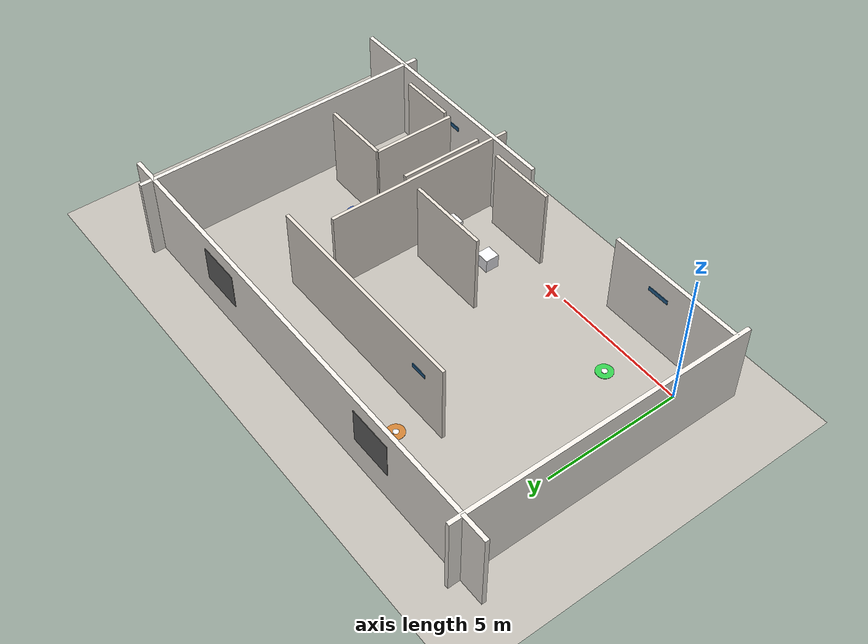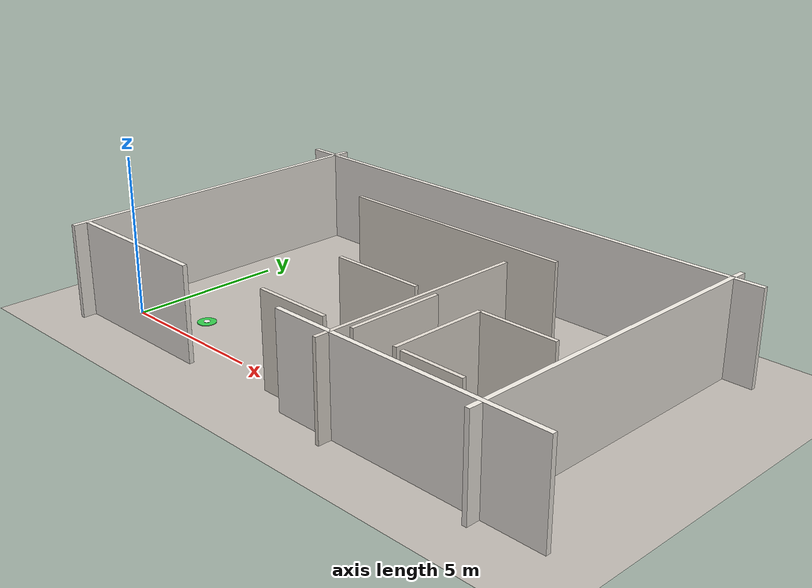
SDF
<sdf version="1.8">
 <world name="office_world_professional">
  <scene>
   <ambient>0.4 0.4 0.4 1</ambient>
   <background>0.7 0.85 1.0 1</background>
   <shadows>true</shadows>
   <sky>
    <time>10.0</time>
    <sunrise>6</sunrise>
    <sunset>18</sunset>
    <clouds>
     <speed>5</speed>
     <direction>1 0 0</direction>
     <humidity>0.3</humidity>
     <mean_size>0.5</mean_size>
     <ambient>0.8 0.8 0.8 1</ambient>
    </clouds>
   </sky>
  </scene>
  <physics name="1ms" type="ignored">
   <max_step_size>0.001</max_step_size>
   <real_time_factor>1.0</real_time_factor>
  </physics>
  <plugin filename="gz-sim-physics-system" name="gz::sim::systems::Physics"/>
  <plugin filename="gz-sim-user-commands-system" name="gz::sim::systems::UserCommands"/>
  <plugin filename="gz-sim-scene-broadcaster-system" name="gz::sim::systems::SceneBroadcaster"/>
  <plugin filename="gz-sim-sensors-system" name="gz::sim::systems::Sensors">
   <render_engine>ogre2</render_engine>
  </plugin>
  <plugin filename="gz-sim-contact-system" name="gz::sim::systems::Contact"/>
  <light type="directional" name="ambient_fill">
   <cast_shadows>false</cast_shadows>
   <pose>0 0 5 0 0 0</pose>
   <diffuse>0.4 0.42 0.45 1</diffuse>
   <specular>0.1 0.1 0.1 1</specular>
   <direction>0 0 -1</direction>
  </light>
  <light type="directional" name="sun">
   <pose>18 7 8 0 0 0</pose>
   <diffuse>0.95 0.90 0.80 1</diffuse>
   <specular>0.3 0.28 0.25 1</specular>
   <direction>-0.5 -0.2 -0.8</direction>
  </light>
  <light type="point" name="ceiling_light_1">
   <cast_shadows>false</cast_shadows>
   <pose>3 2 2.8 0 0 0</pose>
   <diffuse>0.9 0.9 0.95 1</diffuse>
   <specular>0.2 0.2 0.2 1</specular>
   <attenuation>
    <range>10</range>
    <constant>0.3</constant>
    <linear>0.1</linear>
    <quadratic>0.05</quadratic>
   </attenuation>
  </light>
  <light type="point" name="ceiling_light_2">
   <cast_shadows>false</cast_shadows>
   <pose>7 5 2.8 0 0 0</pose>
   <diffuse>0.9 0.9 0.95 1</diffuse>
   <specular>0.2 0.2 0.2 1</specular>
   <attenuation>
    <range>10</range>
    <constant>0.3</constant>
    <linear>0.1</linear>
    <quadratic>0.05</quadratic>
   </attenuation>
  </light>
  <light type="point" name="ceiling_light_3">
   <cast_shadows>false</cast_shadows>
   <pose>12 3 2.8 0 0 0</pose>
   <diffuse>0.9 0.9 0.95 1</diffuse>
   <specular>0.2 0.2 0.2 1</specular>
   <attenuation>
    <range>10</range>
    <constant>0.3</constant>
    <linear>0.1</linear>
    <quadratic>0.05</quadratic>
   </attenuation>
  </light>
  <model name="ground_plane">
   <static>true</static>
   <link name="link">
    <collision name="collision">
     <geometry><plane><normal>0 0 1</normal><size>30 25</size></plane></geometry>
     <surface><friction><ode><mu>0.8</mu><mu2>0.6</mu2></ode></friction></surface>
    </collision>
    <visual name="visual">
     <geometry><plane><normal>0 0 1</normal><size>30 25</size></plane></geometry>
     <material>
      <ambient>0.65 0.63 0.60 1</ambient>
      <diffuse>0.75 0.73 0.70 1</diffuse>
      <specular>0.3 0.3 0.3 1</specular>
     </material>
    </visual>
   </link>
  </model>
  <model name="wall_north">
   <static>true</static>
   <pose>7 9 1.5 0 0 0</pose>
   <link name="link">
    <collision name="collision"><geometry><box><size>18 0.15 3</size></box></geometry></collision>
    <visual name="visual">
     <geometry><box><size>18 0.15 3</size></box></geometry>
     <material>
      <ambient>0.9 0.88 0.85 1</ambient>
      <diffuse>0.95 0.93 0.90 1</diffuse>
      <specular>0.1 0.1 0.1 1</specular>
     </material>
    </visual>
   </link>
  </model>
  <model name="wall_south_left">
   <static>true</static>
   <pose>1.5 -1 1.5 0 0 0</pose>
   <link name="link">
    <collision name="collision"><geometry><box><size>5 0.15 3</size></box></geometry></collision>
    <visual name="visual">
     <geometry><box><size>5 0.15 3</size></box></geometry>
     <material>
      <ambient>0.9 0.88 0.85 1</ambient>
      <diffuse>0.95 0.93 0.90 1</diffuse>
      <specular>0.1 0.1 0.1 1</specular>
     </material>
    </visual>
   </link>
  </model>
  <model name="wall_south_right">
   <static>true</static>
   <pose>12.5 -1 1.5 0 0 0</pose>
   <link name="link">
    <collision name="collision"><geometry><box><size>9 0.15 3</size></box></geometry></collision>
    <visual name="visual">
     <geometry><box><size>9 0.15 3</size></box></geometry>
     <material>
      <ambient>0.9 0.88 0.85 1</ambient>
      <diffuse>0.95 0.93 0.90 1</diffuse>
      <specular>0.1 0.1 0.1 1</specular>
     </material>
    </visual>
   </link>
  </model>
  <model name="wall_west">
   <static>true</static>
   <pose>-1 4 1.5 0 0 0</pose>
   <link name="link">
    <collision name="collision"><geometry><box><size>0.15 11 3</size></box></geometry></collision>
    <visual name="visual">
     <geometry><box><size>0.15 11 3</size></box></geometry>
     <material>
      <ambient>0.9 0.88 0.85 1</ambient>
      <diffuse>0.95 0.93 0.90 1</diffuse>
      <specular>0.1 0.1 0.1 1</specular>
     </material>
    </visual>
   </link>
  </model>
  <model name="wall_east">
   <static>true</static>
   <pose>15 4 1.5 0 0 0</pose>
   <link name="link">
    <collision name="collision"><geometry><box><size>0.15 11 3</size></box></geometry></collision>
    <visual name="visual">
     <geometry><box><size>0.15 11 3</size></box></geometry>
     <material>
      <ambient>0.9 0.88 0.85 1</ambient>
      <diffuse>0.95 0.93 0.90 1</diffuse>
      <specular>0.1 0.1 0.1 1</specular>
     </material>
    </visual>
   </link>
  </model>
  <model name="interior_wall_storage">
   <static>true</static>
   <pose>7 6.5 1.5 0 0 0</pose>
   <link name="link">
    <collision name="collision"><geometry><box><size>8 0.12 3</size></box></geometry></collision>
    <visual name="visual">
     <geometry><box><size>8 0.12 3</size></box></geometry>
     <material>
      <ambient>0.85 0.82 0.78 1</ambient>
      <diffuse>0.90 0.87 0.83 1</diffuse>
      <specular>0.1 0.1 0.1 1</specular>
     </material>
    </visual>
   </link>
  </model>
  <model name="interior_wall_office">
   <static>true</static>
   <pose>10 2 1.5 0 0 0</pose>
   <link name="link">
    <collision name="collision"><geometry><box><size>0.12 7 3</size></box></geometry></collision>
    <visual name="visual">
     <geometry><box><size>0.12 7 3</size></box></geometry>
     <material>
      <ambient>0.85 0.82 0.78 1</ambient>
      <diffuse>0.90 0.87 0.83 1</diffuse>
      <specular>0.1 0.1 0.1 1</specular>
     </material>
    </visual>
   </link>
  </model>
  <model name="window_north_1">
   <static>true</static>
   <pose>3 9.05 1.8 0 0 0</pose>
   <link name="link">
    <visual name="glass">
     <geometry><box><size>1.5 0.05 1.2</size></box></geometry>
     <material>
      <ambient>0.5 0.6 0.8 0.4</ambient>
      <diffuse>0.6 0.7 0.9 0.4</diffuse>
      <specular>0.9 0.9 0.9 1</specular>
     </material>
    </visual>
    <visual name="frame">
     <geometry><box><size>1.6 0.08 1.3</size></box></geometry>
     <material><ambient>0.3 0.3 0.3 1</ambient><diffuse>0.4 0.4 0.4 1</diffuse></material>
    </visual>
   </link>
  </model>
  <model name="window_north_2">
   <static>true</static>
   <pose>11 9.05 1.8 0 0 0</pose>
   <link name="link">
    <visual name="glass">
     <geometry><box><size>1.5 0.05 1.2</size></box></geometry>
     <material>
      <ambient>0.5 0.6 0.8 0.4</ambient>
      <diffuse>0.6 0.7 0.9 0.4</diffuse>
      <specular>0.9 0.9 0.9 1</specular>
     </material>
    </visual>
    <visual name="frame">
     <geometry><box><size>1.6 0.08 1.3</size></box></geometry>
     <material><ambient>0.3 0.3 0.3 1</ambient><diffuse>0.4 0.4 0.4 1</diffuse></material>
    </visual>
   </link>
  </model>
  <model name="sign_reception">
   <static>true</static>
   <pose>2 -0.9 2.2 0 0 0</pose>
   <link name="link">
    <visual name="sign">
     <geometry><box><size>0.8 0.02 0.15</size></box></geometry>
     <material><ambient>0.1 0.3 0.5 1</ambient><diffuse>0.15 0.4 0.6 1</diffuse></material>
    </visual>
   </link>
  </model>
  <model name="sign_storage">
   <static>true</static>
   <pose>4 6.65 2.2 0 0 0</pose>
   <link name="link">
    <visual name="sign">
     <geometry><box><size>0.6 0.02 0.15</size></box></geometry>
     <material><ambient>0.1 0.3 0.5 1</ambient><diffuse>0.15 0.4 0.6 1</diffuse></material>
    </visual>
   </link>
  </model>
  <model name="sign_office">
   <static>true</static>
   <pose>12 -0.9 2.2 0 0 0</pose>
   <link name="link">
    <visual name="sign">
     <geometry><box><size>0.5 0.02 0.15</size></box></geometry>
     <material><ambient>0.1 0.3 0.5 1</ambient><diffuse>0.15 0.4 0.6 1</diffuse></material>
    </visual>
   </link>
  </model>
  <model name="bathroom1_wall_north">
   <static>true</static>
   <pose>8 2.5 1.5 0 0 0</pose>
   <link name="link">
    <collision name="collision"><geometry><box><size>3 0.12 3</size></box></geometry></collision>
    <visual name="visual">
     <geometry><box><size>3 0.12 3</size></box></geometry>
     <material>
      <ambient>0.85 0.82 0.78 1</ambient>
      <diffuse>0.90 0.87 0.83 1</diffuse>
      <specular>0.1 0.1 0.1 1</specular>
     </material>
    </visual>
   </link>
  </model>
  <model name="bathroom1_wall_south">
   <static>true</static>
   <pose>8 -0.5 1.5 0 0 0</pose>
   <link name="link">
    <collision name="collision"><geometry><box><size>2.5 0.12 3</size></box></geometry></collision>
    <visual name="visual">
     <geometry><box><size>2.5 0.12 3</size></box></geometry>
     <material>
      <ambient>0.85 0.82 0.78 1</ambient>
      <diffuse>0.90 0.87 0.83 1</diffuse>
      <specular>0.1 0.1 0.1 1</specular>
     </material>
    </visual>
   </link>
  </model>
  <model name="bathroom1_wall_east">
   <static>true</static>
   <pose>10.25 1 1.5 0 0 0</pose>
   <link name="link">
    <collision name="collision"><geometry><box><size>0.12 3 3</size></box></geometry></collision>
    <visual name="visual">
     <geometry><box><size>0.12 3 3</size></box></geometry>
     <material>
      <ambient>0.85 0.82 0.78 1</ambient>
      <diffuse>0.90 0.87 0.83 1</diffuse>
      <specular>0.1 0.1 0.1 1</specular>
     </material>
    </visual>
   </link>
  </model>
  <model name="sign_bathroom1">
   <static>true</static>
   <pose>8.5 -0.9 2.2 0 0 0</pose>
   <link name="link">
    <visual name="sign">
     <geometry><box><size>0.5 0.02 0.15</size></box></geometry>
     <material><ambient>0.5 0.2 0.1 1</ambient><diffuse>0.7 0.3 0.15 1</diffuse></material>
    </visual>
   </link>
  </model>
  <model name="toilet1">
   <static>true</static>
   <pose>9.5 1.2 0.4 0 0 0</pose>
   <link name="link">
    <collision name="collision"><geometry><box><size>0.5 0.7 0.8</size></box></geometry></collision>
    <visual name="visual">
     <geometry><box><size>0.5 0.7 0.8</size></box></geometry>
     <material>
      <ambient>0.95 0.95 0.95 1</ambient>
      <diffuse>0.98 0.98 0.98 1</diffuse>
      <specular>0.5 0.5 0.5 1</specular>
     </material>
    </visual>
   </link>
  </model>
  <model name="sink1">
   <static>true</static>
   <pose>7.5 1.2 0.6 0 0 0</pose>
   <link name="link">
    <collision name="collision"><geometry><box><size>0.5 0.5 0.5</size></box></geometry></collision>
    <visual name="visual">
     <geometry><box><size>0.5 0.5 0.5</size></box></geometry>
     <material>
      <ambient>0.9 0.9 0.92 1</ambient>
      <diffuse>0.95 0.95 0.97 1</diffuse>
      <specular>0.7 0.7 0.7 1</specular>
     </material>
    </visual>
   </link>
  </model>
  <model name="bathroom2_wall_north">
   <static>true</static>
   <pose>13 2.5 1.5 0 0 0</pose>
   <link name="link">
    <collision name="collision"><geometry><box><size>2.5 0.12 3</size></box></geometry></collision>
    <visual name="visual">
     <geometry><box><size>2.5 0.12 3</size></box></geometry>
     <material>
      <ambient>0.85 0.82 0.78 1</ambient>
      <diffuse>0.90 0.87 0.83 1</diffuse>
      <specular>0.1 0.1 0.1 1</specular>
     </material>
    </visual>
   </link>
  </model>
  <model name="bathroom2_wall_south">
   <static>true</static>
   <pose>13 -0.5 1.5 0 0 0</pose>
   <link name="link">
    <collision name="collision"><geometry><box><size>2 0.12 3</size></box></geometry></collision>
    <visual name="visual">
     <geometry><box><size>2 0.12 3</size></box></geometry>
     <material>
      <ambient>0.85 0.82 0.78 1</ambient>
      <diffuse>0.90 0.87 0.83 1</diffuse>
      <specular>0.1 0.1 0.1 1</specular>
     </material>
    </visual>
   </link>
  </model>
  <model name="bathroom2_wall_west">
   <static>true</static>
   <pose>11.75 1 1.5 0 0 0</pose>
   <link name="link">
    <collision name="collision"><geometry><box><size>0.12 3 3</size></box></geometry></collision>
    <visual name="visual">
     <geometry><box><size>0.12 3 3</size></box></geometry>
     <material>
      <ambient>0.85 0.82 0.78 1</ambient>
      <diffuse>0.90 0.87 0.83 1</diffuse>
      <specular>0.1 0.1 0.1 1</specular>
     </material>
    </visual>
   </link>
  </model>
  <model name="sign_bathroom2">
   <static>true</static>
   <pose>12.5 -0.9 2.2 0 0 0</pose>
   <link name="link">
    <visual name="sign">
     <geometry><box><size>0.5 0.02 0.15</size></box></geometry>
     <material><ambient>0.5 0.2 0.1 1</ambient><diffuse>0.7 0.3 0.15 1</diffuse></material>
    </visual>
   </link>
  </model>
  <model name="toilet2">
   <static>true</static>
   <pose>12.5 1.2 0.4 0 0 0</pose>
   <link name="link">
    <collision name="collision"><geometry><box><size>0.5 0.7 0.8</size></box></geometry></collision>
    <visual name="visual">
     <geometry><box><size>0.5 0.7 0.8</size></box></geometry>
     <material>
      <ambient>0.95 0.95 0.95 1</ambient>
      <diffuse>0.98 0.98 0.98 1</diffuse>
      <specular>0.5 0.5 0.5 1</specular>
     </material>
    </visual>
   </link>
  </model>
  <model name="sink2">
   <static>true</static>
   <pose>13.5 1.2 0.6 0 0 0</pose>
   <link name="link">
    <collision name="collision"><geometry><box><size>0.5 0.5 0.5</size></box></geometry></collision>
    <visual name="visual">
     <geometry><box><size>0.5 0.5 0.5</size></box></geometry>
     <material>
      <ambient>0.9 0.9 0.92 1</ambient>
      <diffuse>0.95 0.95 0.97 1</diffuse>
      <specular>0.7 0.7 0.7 1</specular>
     </material>
    </visual>
   </link>
  </model>
  <model name="waypoint_reception">
   <static>true</static>
   <pose>2 1 0.01 0 0 0</pose>
   <link name="link">
    <visual name="marker">
     <geometry><cylinder><radius>0.3</radius><length>0.02</length></cylinder></geometry>
     <material><ambient>0.1 0.6 0.2 1</ambient><diffuse>0.2 0.8 0.3 1</diffuse></material>
    </visual>
    <visual name="label">
     <pose>0 0 0.02 0 0 0</pose>
     <geometry><cylinder><radius>0.1</radius><length>0.01</length></cylinder></geometry>
     <material><ambient>0.9 0.9 0.9 1</ambient><diffuse>1 1 1 1</diffuse></material>
    </visual>
   </link>
  </model>
  <model name="waypoint_storage">
   <static>true</static>
   <pose>4 7.5 0.01 0 0 0</pose>
   <link name="link">
    <visual name="marker">
     <geometry><cylinder><radius>0.3</radius><length>0.02</length></cylinder></geometry>
     <material><ambient>0.6 0.4 0.1 1</ambient><diffuse>0.8 0.5 0.2 1</diffuse></material>
    </visual>
    <visual name="label">
     <pose>0 0 0.02 0 0 0</pose>
     <geometry><cylinder><radius>0.1</radius><length>0.01</length></cylinder></geometry>
     <material><ambient>0.9 0.9 0.9 1</ambient><diffuse>1 1 1 1</diffuse></material>
    </visual>
   </link>
  </model>
  <model name="waypoint_office">
   <static>true</static>
   <pose>12.5 3 0.01 0 0 0</pose>
   <link name="link">
    <visual name="marker">
     <geometry><cylinder><radius>0.3</radius><length>0.02</length></cylinder></geometry>
     <material><ambient>0.1 0.3 0.7 1</ambient><diffuse>0.2 0.4 0.9 1</diffuse></material>
    </visual>
    <visual name="label">
     <pose>0 0 0.02 0 0 0</pose>
     <geometry><cylinder><radius>0.1</radius><length>0.01</length></cylinder></geometry>
     <material><ambient>0.9 0.9 0.9 1</ambient><diffuse>1 1 1 1</diffuse></material>
    </visual>
   </link>
  </model>
 </world>
</sdf>
